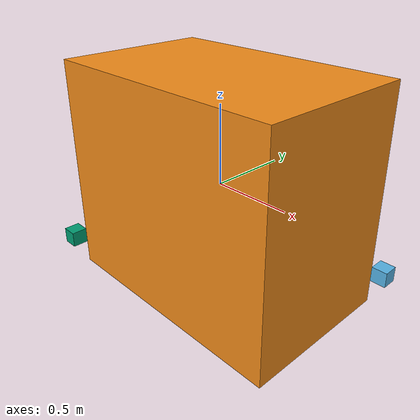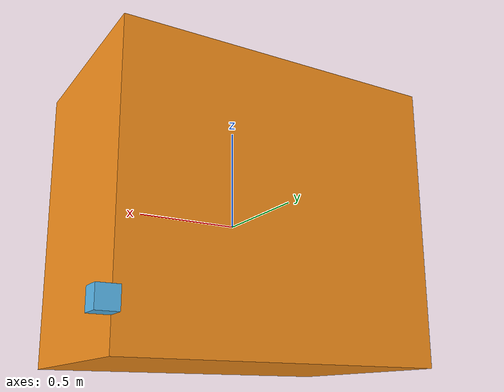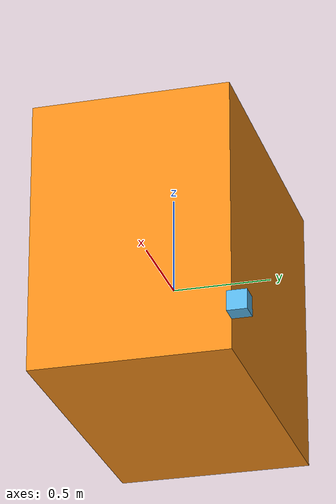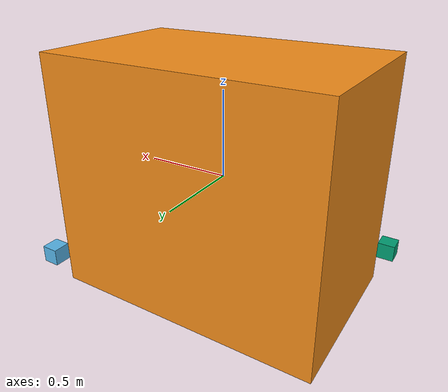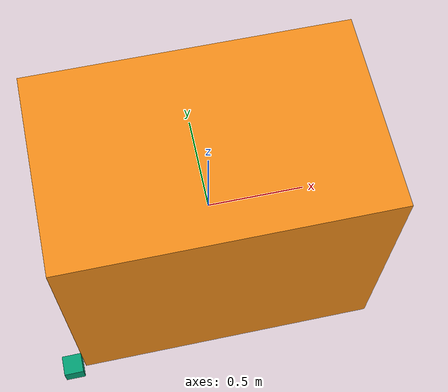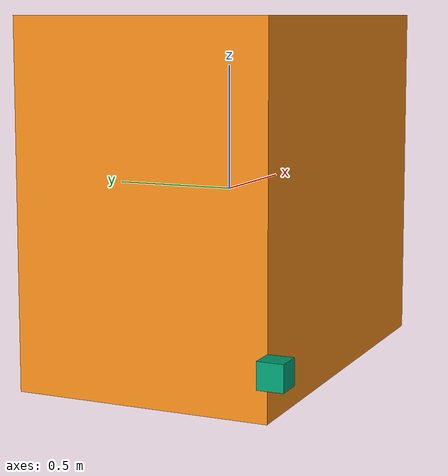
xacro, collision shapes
<?xml version='1.0'?>

<robot name="myrobot" xmlns:xacro="http://www.ros.org/wiki/xacro">

  <xacro:property name="cameraSize" value="0.05"/>
  <xacro:property name="cameraMass" value="0.1"/>
  <xacro:property name="M_PI" value="3.1415926535897931" />

  <xacro:include filename="$(find demonstrator_description)/urdf/demonstrator.gazebo" />
  <xacro:include filename="$(find demonstrator_description)/urdf/demonstrator_materials.xacro" />

  <link name='chassis'>
    <pose>0 0 .7 0 0 0</pose>

    <inertial>
      <mass value="0.1"/>
      <origin xyz="0 0 0" rpy=" 0 0 0"/>
      <inertia
          ixx="0.1" ixy="0" ixz="0"
          iyy="0.1" iyz="0"
          izz="0.1"
      />
    </inertial>

    <collision name='collision'>
      <geometry>
        <box size="1.6 1 1.4"/>
      </geometry>
    </collision>

    <visual name='chassis_visual'>
      <origin xyz="0 0 0" rpy=" 0 0 0"/>
      <geometry>
        <box size="1.6 1 1.4"/>
      </geometry>
    </visual>

  </link>

  <!-- Hokuyo Laser front-->
  <link name="hokuyo_front">
    <collision>
      <origin xyz="0 0 0" rpy="0 0 0"/>
      <geometry>
    <box size="0.1 0.1 0.1"/>
      </geometry>
    </collision>

    <visual>
      <origin xyz="0 0 0" rpy="0 0 0"/>
      <geometry>
        <mesh filename="package://demonstrator_description/meshes/hokuyo.dae"/>
      </geometry>
    </visual>

    <inertial>
      <mass value="1e-5" />
      <origin xyz="0 0 0" rpy="0 0 0"/>
      <inertia ixx="1e-6" ixy="0" ixz="0" iyy="1e-6" iyz="0" izz="1e-6" />
    </inertial>
  </link>

  <!-- Hokuyo Laser rear-->
  <link name="hokuyo_rear">
    <collision>
      <origin xyz="0 0 0" rpy="0 0 ${M_PI}"/>
      <geometry>
    <box size="0.1 0.1 0.1"/>
      </geometry>
    </collision>

    <visual>
      <origin xyz="0 0 0" rpy="0 0 ${M_PI}"/>
      <geometry>
        <mesh filename="package://demonstrator_description/meshes/hokuyo.dae"/>
      </geometry>
    </visual>

    <inertial>
      <mass value="1e-5" />
      <origin xyz="0 0 0" rpy="0 0 ${M_PI}"/>
      <inertia ixx="1e-6" ixy="0" ixz="0" iyy="1e-6" iyz="0" izz="1e-6" />
    </inertial>
  </link>

  <joint name="hokuyo_front_joint" type="fixed">
    <axis xyz="0 1 0" />
    <origin xyz=".85 .55 -.5" rpy="0 0 0"/>
    <parent link="chassis"/>
    <child link="hokuyo_front"/>
  </joint>

  <joint name="hokuyo_rear_joint" type="fixed">
    <axis xyz="0 1 0" />
    <origin xyz="-.85 -.55 -.5" rpy="0 0 ${M_PI}"/>
    <parent link="chassis"/>
    <child link="hokuyo_rear"/>
  </joint>

</robot>
